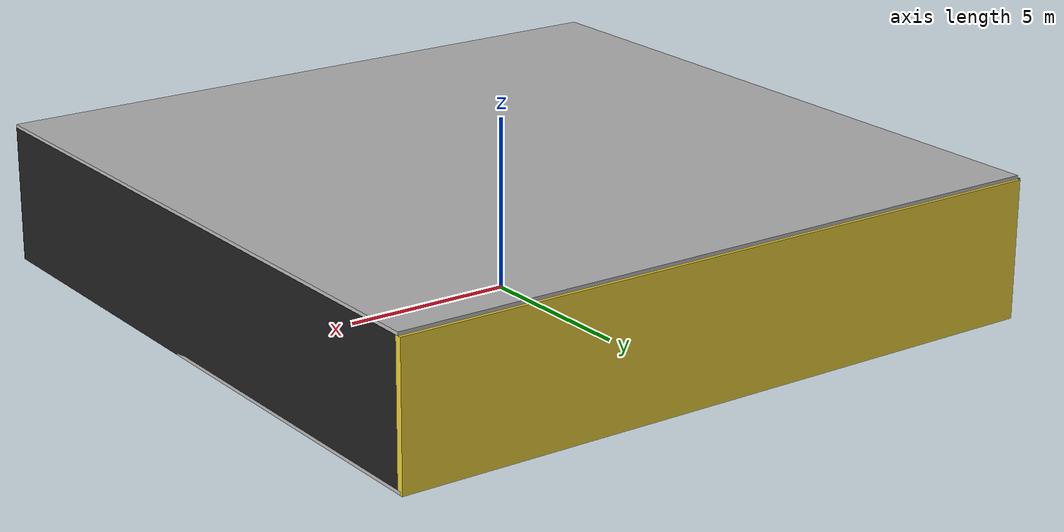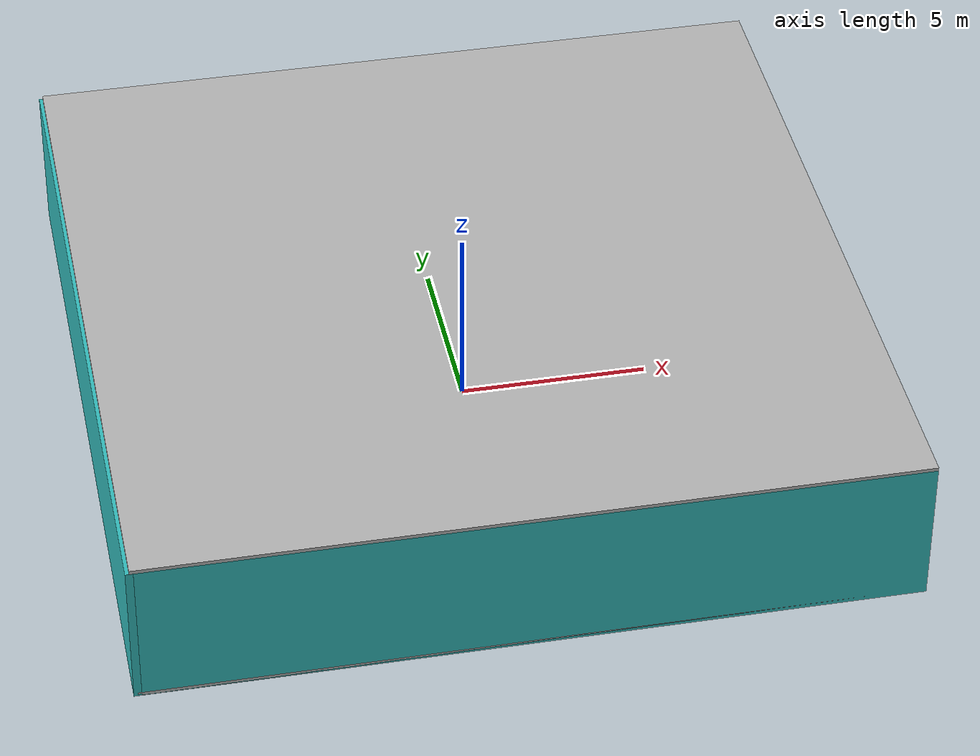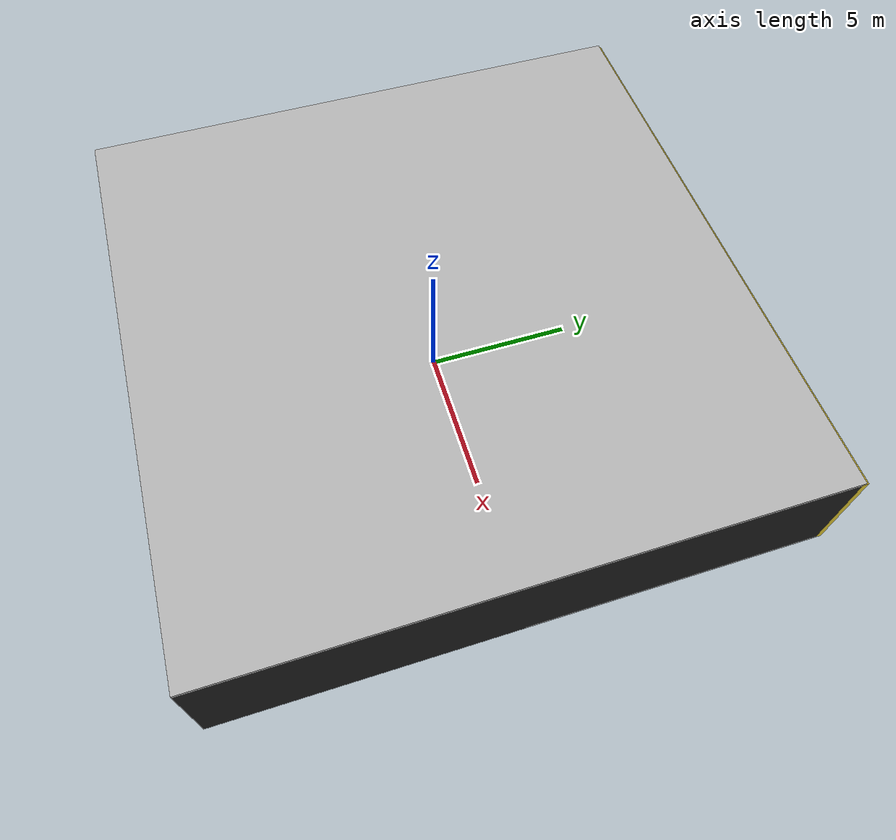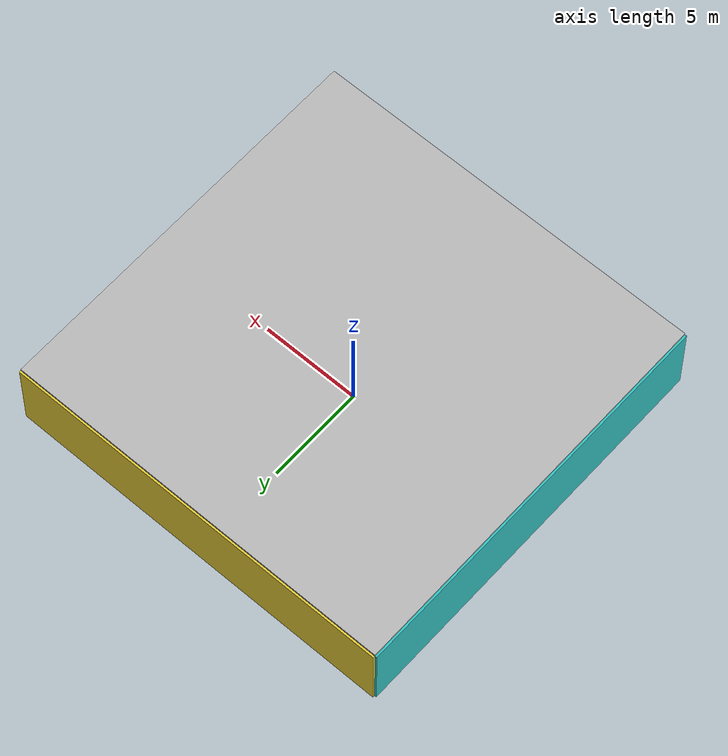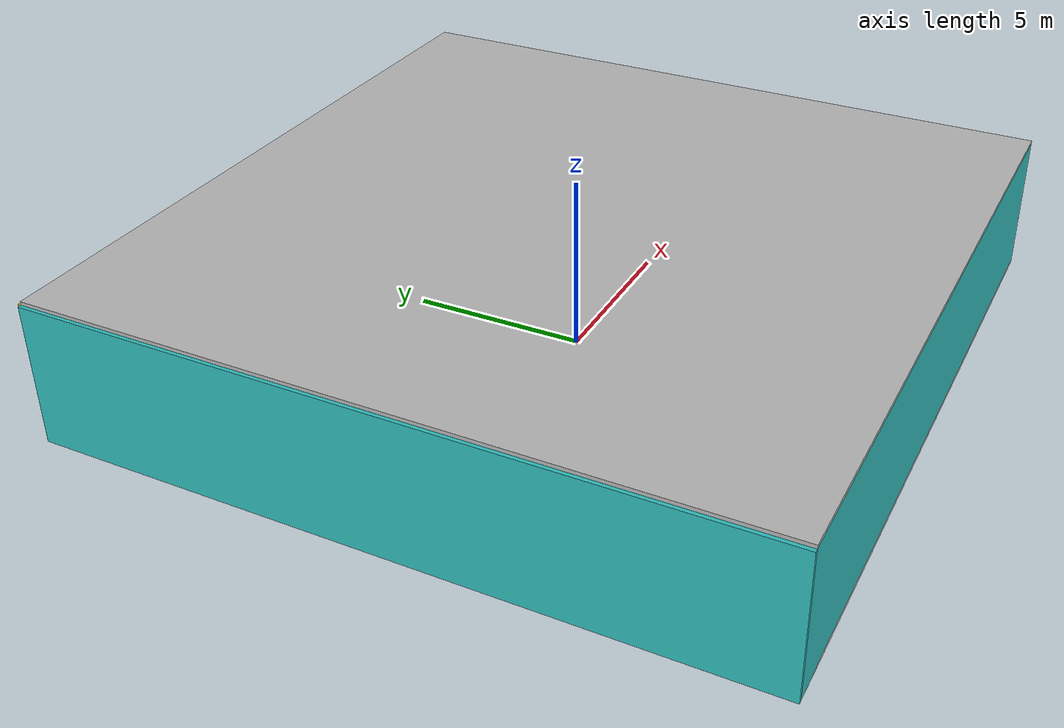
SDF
<sdf version="1.4">
 <world name="default">
  <physics type="ode">
   <max_step_size>0.001</max_step_size>
   <real_time_factor>1</real_time_factor>
   <real_time_update_rate>1000</real_time_update_rate>
   <gravity>0 0 -9.8</gravity>
  </physics>
  <scene><ambient>0.4 0.4 0.4 1</ambient><background>0.7 0.7 0.7 1</background><shadows>1</shadows></scene>
  <model name="Surrounding">
   <static>1</static>
   <link name="Ceiling">
    <collision name="Ceiling_Collision"><geometry><box><size>20 20 0.1</size></box></geometry></collision>
    <visual name="Ceiling_Visual">
     <geometry><box><size>20 20 0.1</size></box></geometry>
     <material>
      <script><uri>file://media/materials/scripts/gazebo.material</uri><name>Gazebo/PioneerBody</name></script>
     </material>
    </visual>
    <pose>0 0 4.05 0 0 0</pose>
   </link>
   <link name="Wall_South">
    <collision name="Wall_South_Collision">
     <geometry><box><size>20 0 4</size></box></geometry>
     <pose>0 0 2 0 -0 0</pose>
    </collision>
    <visual name="Wall_South_Visual">
     <pose>0 0 2 0 -0 0</pose>
     <geometry><box><size>20 0 4</size></box></geometry>
     <material>
      <script><uri>file://media/materials/scripts/gazebo.material</uri><name>Gazebo/Turquoise</name></script>
     </material>
    </visual>
    <velocity_decay><linear>0</linear><angular>0</angular></velocity_decay>
    <pose>0 -10 0 0 -0 0</pose>
   </link>
   <link name="Wall_East">
    <collision name="Wall_21_Collision">
     <geometry><box><size>20 0 4</size></box></geometry>
     <pose>0 0 2 0 -0 0</pose>
    </collision>
    <visual name="Wall_21_Visual">
     <pose>0 0 2 0 -0 0</pose>
     <geometry><box><size>20 0 4</size></box></geometry>
     <material>
      <script><uri>file://media/materials/scripts/gazebo.material</uri><name>Gazebo/Black</name></script>
     </material>
    </visual>
    <velocity_decay><linear>0</linear><angular>0</angular></velocity_decay>
    <pose>10 0 0 0 -0 1.5708</pose>
   </link>
   <link name="Wall_North">
    <collision name="Wall_22_Collision">
     <geometry><box><size>20 0.2 4</size></box></geometry>
     <pose>0 0 2 0 -0 0</pose>
    </collision>
    <visual name="Wall_22_Visual">
     <pose>0 0 2 0 -0 0</pose>
     <geometry><box><size>20 0.2 4</size></box></geometry>
     <material>
      <script><uri>file://media/materials/scripts/gazebo.material</uri><name>Gazebo/ZincYellow</name></script>
     </material>
    </visual>
    <velocity_decay><linear>0</linear><angular>0</angular></velocity_decay>
    <pose>0 10 0 0 -0 0</pose>
   </link>
   <link name="Wall_West">
    <collision name="Wall_23_Collision">
     <geometry><box><size>20 0.2 4</size></box></geometry>
     <pose>0 0 2 0 -0 0</pose>
    </collision>
    <visual name="Wall_23_Visual">
     <pose>0 0 2 0 -0 0</pose>
     <geometry><box><size>20 0.2 4</size></box></geometry>
     <material>
      <script><uri>file://media/materials/scripts/gazebo.material</uri><name>Gazebo/TurquoiseGlow</name></script>
     </material>
    </visual>
    <velocity_decay><linear>0</linear><angular>0</angular></velocity_decay>
    <pose>-10 0 0 0 0 -1.5708</pose>
   </link>
   <link name="Ground_link">
    <collision name="collision">
     <pose>0 0 .05 0 -0 0</pose>
     <geometry><box><size>20 20 0.1</size></box></geometry>
    </collision>
    <visual name="visual">
     <pose>0 0 .05 0 -0 0</pose>
     <geometry><box><size>20 20 0.1</size></box></geometry>
     <material>
      <script><uri>file://media/materials/scripts/gazebo.material</uri><name>Gazebo/Pioneer2Body</name></script>
     </material>
    </visual>
   </link>
   <static>1</static>
  </model>
  <spherical_coordinates>
   <surface_model>EARTH_WGS84</surface_model>
   <latitude_deg>0</latitude_deg>
   <longitude_deg>0</longitude_deg>
   <elevation>0</elevation>
   <heading_deg>0</heading_deg>
  </spherical_coordinates>
  <light name="lightball_0" type="diffuse">
   <diffuse>0.8 0.8 0.8 1</diffuse>
   <specular>0.2 0.2 0.2 1</specular>
   <attenuation>
    <range>100</range>
    <constant>0.7</constant>
    <linear>0.01</linear>
    <quadratic>0.001</quadratic>
   </attenuation>
   <direction>-0.5 0.1 -0.9</direction>
   <pose>3.15753373519 6.65769906914 0.800101937701 0 0 0</pose>
  </light>
  <light name="lightball_1" type="diffuse">
   <diffuse>0.8 0.8 0.8 1</diffuse>
   <specular>0.2 0.2 0.2 1</specular>
   <attenuation>
    <range>100</range>
    <constant>0.7</constant>
    <linear>0.01</linear>
    <quadratic>0.001</quadratic>
   </attenuation>
   <direction>-0.5 0.1 -0.9</direction>
   <pose>-3.60238894603 6.76349980312 1.89250672985 0 0 0</pose>
  </light>
  <light name="lightball_2" type="diffuse">
   <diffuse>0.8 0.8 0.8 1</diffuse>
   <specular>0.2 0.2 0.2 1</specular>
   <attenuation>
    <range>100</range>
    <constant>0.7</constant>
    <linear>0.01</linear>
    <quadratic>0.001</quadratic>
   </attenuation>
   <direction>-0.5 0.1 -0.9</direction>
   <pose>8.34967323367 2.89888451778 1.81474221361 0 0 0</pose>
  </light>
  <light name="lightball_3" type="diffuse">
   <diffuse>0.8 0.8 0.8 1</diffuse>
   <specular>0.2 0.2 0.2 1</specular>
   <attenuation>
    <range>100</range>
    <constant>0.7</constant>
    <linear>0.01</linear>
    <quadratic>0.001</quadratic>
   </attenuation>
   <direction>-0.5 0.1 -0.9</direction>
   <pose>9.22731237735 2.93389040702 1.27153964349 0 0 0</pose>
  </light>
  <light name="lightball_4" type="diffuse">
   <diffuse>0.8 0.8 0.8 1</diffuse>
   <specular>0.2 0.2 0.2 1</specular>
   <attenuation>
    <range>100</range>
    <constant>0.7</constant>
    <linear>0.01</linear>
    <quadratic>0.001</quadratic>
   </attenuation>
   <direction>-0.5 0.1 -0.9</direction>
   <pose>-4.49559022497 -1.53039973733 2.74426414631 0 0 0</pose>
  </light>
  <include>
   <uri>model://textured_shapes</uri>
   <pose>-7.02659792012 -1.91679293219 0 0 0 0.729697382769</pose>
  </include>
  <include><uri>model://table</uri><pose>-1.63423259883 -6.44314406605 0 0 0 0.39512616869</pose></include>
  <include><uri>model://cabinet</uri><pose>-1.49280990569 -4.88805952105 0 0 0 0.745377817034</pose></include>
  <include>
   <uri>model://construction_cone</uri>
   <pose>-1.00609097564 4.28131446274 0 0 0 0.251207161738</pose>
  </include>
  <include><uri>model://table</uri><pose>1.83889745616 -4.98119126571 0 0 0 3.11472405674</pose></include>
  <include>
   <uri>model://construction_cone</uri>
   <pose>6.66716327654 -1.99126133454 0 0 0 1.82387063889</pose>
  </include>
 </world>
</sdf>

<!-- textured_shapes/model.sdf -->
<sdf version="1.6">
  <model name="textured_shapes">
    <pose>0 0 0.5 0 0 0</pose>
    <link name="box">
      <pose>0 -1.5 0 0 0 0</pose>
      <collision name="collision">
        <geometry>
          <box>
            <size>1 1 1</size>
          </box>
        </geometry>
      </collision>
      <visual name="visual">
        <geometry>
          <box>
            <size>1 1 1</size>
          </box>
        </geometry>
        <material>
          <script>
            <uri>model://../model_source/models/textured_shapes/materials/scripts</uri>
            <uri>model://../model_source/models/textured_shapes/materials/textures</uri>
            <name>TexturedShape/Squares</name>
          </script>
        </material>
      </visual>
    </link>
    <link name="sphere">
      <collision name="collision">
        <geometry>
          <sphere>
            <radius>0.5</radius>
          </sphere>
        </geometry>
      </collision>
      <visual name="visual">
        <geometry>
          <sphere>
            <radius>0.5</radius>
          </sphere>
        </geometry>
        <material>
          <script>
            <uri>model://../model_source/models/textured_shapes/materials/scripts</uri>
            <uri>model://../model_source/models/textured_shapes/materials/textures</uri>
            <name>TexturedShape/Squares</name>
          </script>
        </material>
      </visual>
    </link>
    <link name="cylinder">
      <pose>0 1.5 0 0 0 0</pose>
      <collision name="collision">
        <geometry>
          <cylinder>
            <radius>0.5</radius>
            <length>1</length>
          </cylinder>
        </geometry>
      </collision>
      <visual name="visual">
        <geometry>
          <cylinder>
            <radius>0.5</radius>
            <length>1</length>
          </cylinder>
        </geometry>
        <material>
          <script>
            <uri>model://../model_source/models/textured_shapes/materials/scripts</uri>
            <uri>model://../model_source/models/textured_shapes/materials/textures</uri>
            <name>TexturedShape/Squares</name>
          </script>
        </material>
      </visual>
    </link>
  </model>
</sdf>

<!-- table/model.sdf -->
<sdf version="1.5">
  <model name="table">
    <static>true</static>
    <link name="link">
      <collision name="surface">
        <pose>0 0 1.0 0 0 0</pose>
        <geometry>
          <box>
            <size>1.5 0.8 0.03</size>
          </box>
        </geometry>
        <surface>
          <friction>
            <ode>
              <mu>0.6</mu>
              <mu2>0.6</mu2>
            </ode>
          </friction>
        </surface>
      </collision>
      <visual name="visual1">
        <pose>0 0 1.0 0 0 0</pose>
        <geometry>
          <box>
            <size>1.5 0.8 0.03</size>
          </box>
        </geometry>
        <material>
          <script>
            <uri>model://media/materials/scripts/gazebo.material</uri>
            <name>Gazebo/Wood</name>
          </script>
        </material>
      </visual>
      <collision name="front_left_leg">
        <pose>0.68 0.38 0.5 0 0 0</pose>
        <geometry>
          <cylinder>
            <radius>0.02</radius>
            <length>1.0</length>
          </cylinder>
        </geometry>
      </collision>
      <visual name="front_left_leg">
        <pose>0.68 0.38 0.5 0 0 0</pose>
        <geometry>
          <cylinder>
            <radius>0.02</radius>
            <length>1.0</length>
          </cylinder>
        </geometry>
        <material>
          <script>
            <uri>model://media/materials/scripts/gazebo.material</uri>
            <name>Gazebo/Grey</name>
          </script>
        </material>
      </visual>
      <collision name="front_right_leg">
        <pose>0.68 -0.38 0.5 0 0 0</pose>
        <geometry>
          <cylinder>
            <radius>0.02</radius>
            <length>1.0</length>
          </cylinder>
        </geometry>
      </collision>
      <visual name="front_right_leg">
        <pose>0.68 -0.38 0.5 0 0 0</pose>
        <geometry>
          <cylinder>
            <radius>0.02</radius>
            <length>1.0</length>
          </cylinder>
        </geometry>
        <material>
          <script>
            <uri>model://media/materials/scripts/gazebo.material</uri>
            <name>Gazebo/Grey</name>
          </script>
        </material>
      </visual>
      <collision name="back_right_leg">
        <pose>-0.68 -0.38 0.5 0 0 0</pose>
        <geometry>
          <cylinder>
            <radius>0.02</radius>
            <length>1.0</length>
          </cylinder>
        </geometry>
      </collision>
      <visual name="back_right_leg">
        <pose>-0.68 -0.38 0.5 0 0 0</pose>
        <geometry>
          <cylinder>
            <radius>0.02</radius>
            <length>1.0</length>
          </cylinder>
        </geometry>
        <material>
          <script>
            <uri>model://media/materials/scripts/gazebo.material</uri>
            <name>Gazebo/Grey</name>
          </script>
        </material>
      </visual>
      <collision name="back_left_leg">
        <pose>-0.68 0.38 0.5 0 0 0</pose>
        <geometry>
          <cylinder>
            <radius>0.02</radius>
            <length>1.0</length>
          </cylinder>
        </geometry>
      </collision>
      <visual name="back_left_leg">
        <pose>-0.68 0.38 0.5 0 0 0</pose>
        <geometry>
          <cylinder>
            <radius>0.02</radius>
            <length>1.0</length>
          </cylinder>
        </geometry>
        <material>
          <script>
            <uri>model://media/materials/scripts/gazebo.material</uri>
            <name>Gazebo/Grey</name>
          </script>
        </material>
      </visual>
    </link>
  </model>
</sdf>

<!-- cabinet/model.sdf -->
<sdf version="1.5">
  <model name="cabinet">
    <static>true</static>
    <link name="cabinet_bottom_plate">
      <inertial>
        <pose>0 0 -1 0 0 0</pose>
        <inertia>
          <ixx>2.050000</ixx>
          <ixy>0</ixy>
          <ixz>0</ixz>
          <iyy>2.050000</iyy>
          <iyz>0</iyz>
          <izz>2.050000</izz>
        </inertia>
        <mass>25.000000</mass>
      </inertial>
      <collision name="cabinet_bottom_plate_geom">
        <pose>0 0 0.010000 0 0 0</pose>
        <geometry>
          <box>
            <size>0.450000 0.450000 0.020000</size>
          </box>
        </geometry>
      </collision>
      <visual name="cabinet_bottom_plate_geom_visual">
        <pose>0 0 0.010000 0 0 0</pose>
        <geometry>
          <box>
            <size>0.450000 0.450000 0.020000</size>
          </box>
        </geometry>
        <material>
          <script>
            <uri>model://media/materials/scripts/gazebo.material</uri>
            <name>Gazebo/Wood</name>
          </script>
        </material>
      </visual>
      <collision name="cabinet_bottom_plate_geom_cabinet_back_plate">
        <pose>0.235000 0 0.510000 0 0 0</pose>
        <geometry>
          <box>
            <size>0.020000 0.450000 1.020000</size>
          </box>
        </geometry>
      </collision>
      <visual name="cabinet_bottom_plate_geom_cabinet_back_plate_visual">
        <pose>0.235000 0 0.510000 0 0 0</pose>
        <geometry>
          <box>
            <size>0.020000 0.450000 1.020000</size>
          </box>
        </geometry>
        <material>
          <script>
            <uri>model://media/materials/scripts/gazebo.material</uri>
            <name>Gazebo/Wood</name>
          </script>
        </material>
      </visual>
      <collision name="cabinet_bottom_plate_geom_cabinet_left_plate">
        <pose>0 0.235000 0.510000 0 0 0</pose>
        <geometry>
          <box>
            <size>0.450000 0.020000 1.020000</size>
          </box>
        </geometry>
      </collision>
      <visual name="cabinet_bottom_plate_geom_cabinet_left_plate_visual">
        <pose>0 0.235000 0.510000 0 0 0</pose>
        <geometry>
          <box>
            <size>0.450000 0.020000 1.020000</size>
          </box>
        </geometry>
        <material>
          <script>
            <uri>model://media/materials/scripts/gazebo.material</uri>
            <name>Gazebo/Wood</name>
          </script>
        </material>
      </visual>
      <collision name="cabinet_bottom_plate_geom_cabinet_middle_plate">
        <pose>0 0 0.510000 0 0 0</pose>
        <geometry>
          <box>
            <size>0.450000 0.450000 0.020000</size>
          </box>
        </geometry>
      </collision>
      <visual name="cabinet_bottom_plate_geom_cabinet_middle_plate_visual">
        <pose>0 0 0.510000 0 0 0</pose>
        <geometry>
          <box>
            <size>0.450000 0.450000 0.020000</size>
          </box>
        </geometry>
        <material>
          <script>
            <uri>model://media/materials/scripts/gazebo.material</uri>
            <name>Gazebo/Wood</name>
          </script>
        </material>
      </visual>
      <collision name="cabinet_bottom_plate_geom_cabinet_right_plate">
        <pose>0 -0.235000 0.510000 0 0 0</pose>
        <geometry>
          <box>
            <size>0.450000 0.020000 1.020000</size>
          </box>
        </geometry>
      </collision>
      <visual name="cabinet_bottom_plate_geom_cabinet_right_plate_visual">
        <pose>0 -0.235000 0.510000 0 0 0</pose>
        <geometry>
          <box>
            <size>0.450000 0.020000 1.020000</size>
          </box>
        </geometry>
        <material>
          <script>
            <uri>model://media/materials/scripts/gazebo.material</uri>
            <name>Gazebo/Wood</name>
          </script>
        </material>
      </visual>
      <collision name="cabinet_bottom_plate_geom_cabinet_top_plate">
        <pose>0 0 1.010000 0 0 0</pose>
        <geometry>
          <box>
            <size>0.450000 0.450000 0.020000</size>
          </box>
        </geometry>
      </collision>
      <visual name="cabinet_bottom_plate_geom_cabinet_top_plate_visual">
        <pose>0 0 1.010000 0 0 0</pose>
        <geometry>
          <box>
            <size>0.450000 0.450000 0.020000</size>
          </box>
        </geometry>
        <material>
          <script>
            <uri>model://media/materials/scripts/gazebo.material</uri>
            <name>Gazebo/Wood</name>
          </script>
        </material>
      </visual>
    </link>
  </model>
</sdf>

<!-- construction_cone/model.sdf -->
<sdf version="1.5">
  <model name="Construction Cone">
    <link name="link">
      <collision name="collision">
        <geometry>
          <mesh>
            <scale>10 10 10</scale>
            <uri>file://isr-testbed/construction_cone/meshes/construction_cone.dae</uri>
          </mesh>
        </geometry>
      </collision>
      <visual name="visual">
        <geometry>
          <mesh>
            <scale>10 10 10</scale>
            <uri>file://isr-testbed/construction_cone/meshes/construction_cone.dae</uri>
          </mesh>
        </geometry>
      </visual>
    </link>
  </model>
</sdf>
